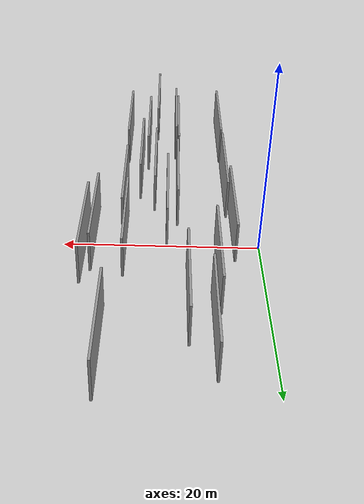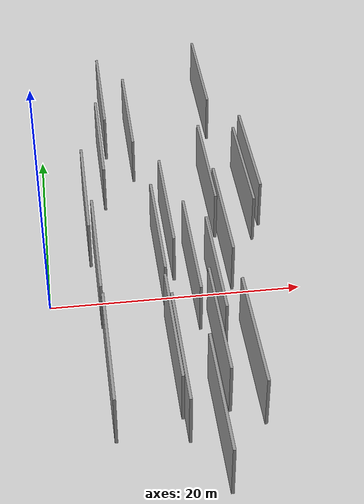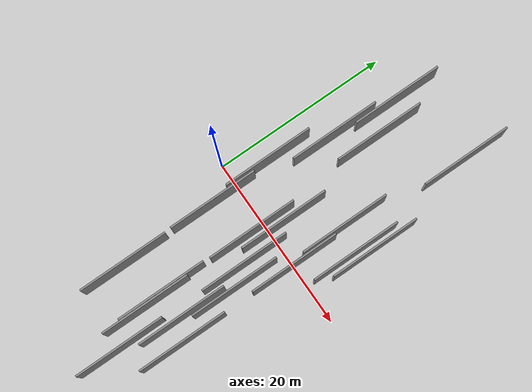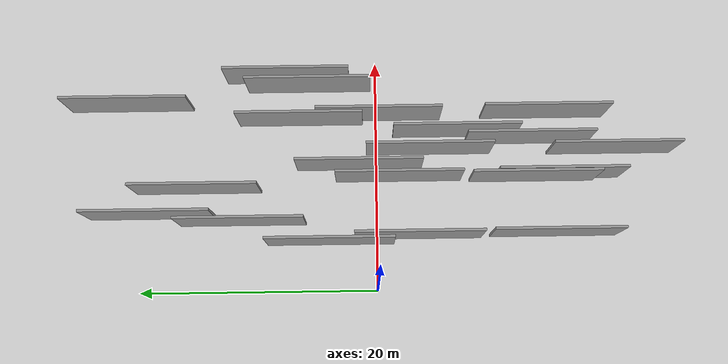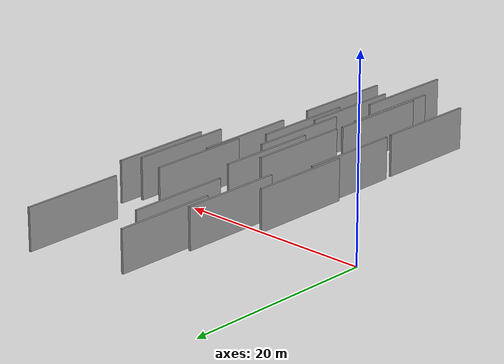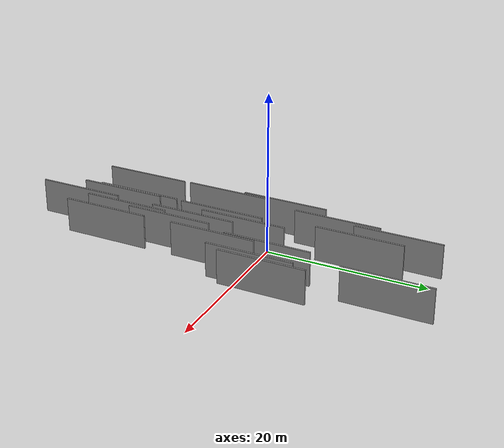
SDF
<sdf version="1.6">
 <world name="default">
  <scene>
   <sky><clouds><speed>12</speed></clouds></sky>
   <ambient>0.4 0.4 0.4 1</ambient>
   <background>0.7 0.7 0.7 1</background>
   <shadows>1</shadows>
  </scene>
  <gravity>0 0 -9.8066</gravity>
  <magnetic_field>6e-06 2.3e-05 -4.2e-05</magnetic_field>
  <physics default="0" name="default_physics" type="ode">
   <ode>
    <solver>
     <type>quick</type>
     <iters>10</iters>
     <sor>1.0</sor>
     <use_dynamic_moi_rescaling>0</use_dynamic_moi_rescaling>
    </solver>
    <constraints>
     <cfm>0</cfm>
     <erp>0.2</erp>
     <contact_max_correcting_vel>100</contact_max_correcting_vel>
     <contact_surface_layer>0.001</contact_surface_layer>
    </constraints>
   </ode>
   <max_step_size>0.004</max_step_size>
   <real_time_factor>1</real_time_factor>
   <real_time_update_rate>250</real_time_update_rate>
  </physics>
  <light name="sun" type="directional">
   <pose>0 0 10 0 0 0</pose>
   <diffuse>0.8 0.8 0.8 1</diffuse>
   <specular>0.2 0.2 0.2 1</specular>
   <attenuation>
    <range>1000</range>
    <constant>0.9</constant>
    <linear>0.01</linear>
    <quadratic>0.001</quadratic>
   </attenuation>
   <direction>-0.5 0.1 -0.9</direction>
  </light>
  <model name="grey_wall_1">
   <static>1</static>
   <pose>8.4671 -1.6978 5.0 0.000000 0.000000 1.570796</pose>
   <link name="link">
    <pose>0 0 2.00 0 0 0</pose>
    <collision name="collision"><geometry><box><size>10.00 0.2 4.00</size></box></geometry></collision>
    <visual name="visual">
     <cast_shadows>0</cast_shadows>
     <geometry><box><size>10.00 0.2 4.00</size></box></geometry>
     <material>
      <script>
       <uri>model://grey_wall/materials/scripts</uri>
       <uri>model://grey_wall/materials/textures</uri>
       <name>vrc/grey_wall</name>
      </script>
     </material>
    </visual>
   </link>
  </model>
  <model name="grey_wall_2">
   <static>1</static>
   <pose>7.6468 14.2933 5.0 0.000000 0.000000 1.570796</pose>
   <link name="link">
    <pose>0 0 2.00 0 0 0</pose>
    <collision name="collision"><geometry><box><size>10.00 0.2 4.00</size></box></geometry></collision>
    <visual name="visual">
     <cast_shadows>0</cast_shadows>
     <geometry><box><size>10.00 0.2 4.00</size></box></geometry>
     <material>
      <script>
       <uri>model://grey_wall/materials/scripts</uri>
       <uri>model://grey_wall/materials/textures</uri>
       <name>vrc/grey_wall</name>
      </script>
     </material>
    </visual>
   </link>
  </model>
  <model name="grey_wall_3">
   <static>1</static>
   <pose>11.5002 -12.1153 5.0 0.000000 0.000000 1.570796</pose>
   <link name="link">
    <pose>0 0 2.00 0 0 0</pose>
    <collision name="collision"><geometry><box><size>10.00 0.2 4.00</size></box></geometry></collision>
    <visual name="visual">
     <cast_shadows>0</cast_shadows>
     <geometry><box><size>10.00 0.2 4.00</size></box></geometry>
     <material>
      <script>
       <uri>model://grey_wall/materials/scripts</uri>
       <uri>model://grey_wall/materials/textures</uri>
       <name>vrc/grey_wall</name>
      </script>
     </material>
    </visual>
   </link>
  </model>
  <model name="grey_wall_4">
   <static>1</static>
   <pose>5.0093 10.6952 5.0 0.000000 0.000000 1.570796</pose>
   <link name="link">
    <pose>0 0 2.00 0 0 0</pose>
    <collision name="collision"><geometry><box><size>10.00 0.2 4.00</size></box></geometry></collision>
    <visual name="visual">
     <cast_shadows>0</cast_shadows>
     <geometry><box><size>10.00 0.2 4.00</size></box></geometry>
     <material>
      <script>
       <uri>model://grey_wall/materials/scripts</uri>
       <uri>model://grey_wall/materials/textures</uri>
       <name>vrc/grey_wall</name>
      </script>
     </material>
    </visual>
   </link>
  </model>
  <model name="grey_wall_5">
   <static>1</static>
   <pose>12.1381 -6.3088 5.0 0.000000 0.000000 1.570796</pose>
   <link name="link">
    <pose>0 0 2.00 0 0 0</pose>
    <collision name="collision"><geometry><box><size>10.00 0.2 4.00</size></box></geometry></collision>
    <visual name="visual">
     <cast_shadows>0</cast_shadows>
     <geometry><box><size>10.00 0.2 4.00</size></box></geometry>
     <material>
      <script>
       <uri>model://grey_wall/materials/scripts</uri>
       <uri>model://grey_wall/materials/textures</uri>
       <name>vrc/grey_wall</name>
      </script>
     </material>
    </visual>
   </link>
  </model>
  <model name="grey_wall_6">
   <static>1</static>
   <pose>3.7926 -3.1855 5.0 0.000000 0.000000 1.570796</pose>
   <link name="link">
    <pose>0 0 2.00 0 0 0</pose>
    <collision name="collision"><geometry><box><size>10.00 0.2 4.00</size></box></geometry></collision>
    <visual name="visual">
     <cast_shadows>0</cast_shadows>
     <geometry><box><size>10.00 0.2 4.00</size></box></geometry>
     <material>
      <script>
       <uri>model://grey_wall/materials/scripts</uri>
       <uri>model://grey_wall/materials/textures</uri>
       <name>vrc/grey_wall</name>
      </script>
     </material>
    </visual>
   </link>
  </model>
  <model name="grey_wall_7">
   <static>1</static>
   <pose>9.4521 1.4201 5.0 0.000000 0.000000 1.570796</pose>
   <link name="link">
    <pose>0 0 2.00 0 0 0</pose>
    <collision name="collision"><geometry><box><size>10.00 0.2 4.00</size></box></geometry></collision>
    <visual name="visual">
     <cast_shadows>0</cast_shadows>
     <geometry><box><size>10.00 0.2 4.00</size></box></geometry>
     <material>
      <script>
       <uri>model://grey_wall/materials/scripts</uri>
       <uri>model://grey_wall/materials/textures</uri>
       <name>vrc/grey_wall</name>
      </script>
     </material>
    </visual>
   </link>
  </model>
  <model name="grey_wall_8">
   <static>1</static>
   <pose>14.5979 19.9348 5.0 0.000000 0.000000 1.570796</pose>
   <link name="link">
    <pose>0 0 2.00 0 0 0</pose>
    <collision name="collision"><geometry><box><size>10.00 0.2 4.00</size></box></geometry></collision>
    <visual name="visual">
     <cast_shadows>0</cast_shadows>
     <geometry><box><size>10.00 0.2 4.00</size></box></geometry>
     <material>
      <script>
       <uri>model://grey_wall/materials/scripts</uri>
       <uri>model://grey_wall/materials/textures</uri>
       <name>vrc/grey_wall</name>
      </script>
     </material>
    </visual>
   </link>
  </model>
  <model name="grey_wall_9">
   <static>1</static>
   <pose>8.3537 -12.3968 5.0 0.000000 0.000000 1.570796</pose>
   <link name="link">
    <pose>0 0 2.00 0 0 0</pose>
    <collision name="collision"><geometry><box><size>10.00 0.2 4.00</size></box></geometry></collision>
    <visual name="visual">
     <cast_shadows>0</cast_shadows>
     <geometry><box><size>10.00 0.2 4.00</size></box></geometry>
     <material>
      <script>
       <uri>model://grey_wall/materials/scripts</uri>
       <uri>model://grey_wall/materials/textures</uri>
       <name>vrc/grey_wall</name>
      </script>
     </material>
    </visual>
   </link>
  </model>
  <model name="grey_wall_10">
   <static>1</static>
   <pose>16.8935 7.1975 5.0 0.000000 0.000000 1.570796</pose>
   <link name="link">
    <pose>0 0 2.00 0 0 0</pose>
    <collision name="collision"><geometry><box><size>10.00 0.2 4.00</size></box></geometry></collision>
    <visual name="visual">
     <cast_shadows>0</cast_shadows>
     <geometry><box><size>10.00 0.2 4.00</size></box></geometry>
     <material>
      <script>
       <uri>model://grey_wall/materials/scripts</uri>
       <uri>model://grey_wall/materials/textures</uri>
       <name>vrc/grey_wall</name>
      </script>
     </material>
    </visual>
   </link>
  </model>
  <model name="grey_wall_11">
   <static>1</static>
   <pose>16.0885 5.4564 5.0 0.000000 0.000000 1.570796</pose>
   <link name="link">
    <pose>0 0 2.00 0 0 0</pose>
    <collision name="collision"><geometry><box><size>10.00 0.2 4.00</size></box></geometry></collision>
    <visual name="visual">
     <cast_shadows>0</cast_shadows>
     <geometry><box><size>10.00 0.2 4.00</size></box></geometry>
     <material>
      <script>
       <uri>model://grey_wall/materials/scripts</uri>
       <uri>model://grey_wall/materials/textures</uri>
       <name>vrc/grey_wall</name>
      </script>
     </material>
    </visual>
   </link>
  </model>
  <model name="grey_wall_12">
   <static>1</static>
   <pose>3.3902 3.7227 5.0 0.000000 0.000000 1.570796</pose>
   <link name="link">
    <pose>0 0 2.00 0 0 0</pose>
    <collision name="collision"><geometry><box><size>10.00 0.2 4.00</size></box></geometry></collision>
    <visual name="visual">
     <cast_shadows>0</cast_shadows>
     <geometry><box><size>10.00 0.2 4.00</size></box></geometry>
     <material>
      <script>
       <uri>model://grey_wall/materials/scripts</uri>
       <uri>model://grey_wall/materials/textures</uri>
       <name>vrc/grey_wall</name>
      </script>
     </material>
    </visual>
   </link>
  </model>
  <model name="grey_wall_13">
   <static>1</static>
   <pose>13.2383 6.1250 5.0 0.000000 0.000000 1.570796</pose>
   <link name="link">
    <pose>0 0 2.00 0 0 0</pose>
    <collision name="collision"><geometry><box><size>10.00 0.2 4.00</size></box></geometry></collision>
    <visual name="visual">
     <cast_shadows>0</cast_shadows>
     <geometry><box><size>10.00 0.2 4.00</size></box></geometry>
     <material>
      <script>
       <uri>model://grey_wall/materials/scripts</uri>
       <uri>model://grey_wall/materials/textures</uri>
       <name>vrc/grey_wall</name>
      </script>
     </material>
    </visual>
   </link>
  </model>
  <model name="grey_wall_14">
   <static>1</static>
   <pose>3.8675 -13.8784 5.0 0.000000 0.000000 1.570796</pose>
   <link name="link">
    <pose>0 0 2.00 0 0 0</pose>
    <collision name="collision"><geometry><box><size>10.00 0.2 4.00</size></box></geometry></collision>
    <visual name="visual">
     <cast_shadows>0</cast_shadows>
     <geometry><box><size>10.00 0.2 4.00</size></box></geometry>
     <material>
      <script>
       <uri>model://grey_wall/materials/scripts</uri>
       <uri>model://grey_wall/materials/textures</uri>
       <name>vrc/grey_wall</name>
      </script>
     </material>
    </visual>
   </link>
  </model>
  <model name="grey_wall_15">
   <static>1</static>
   <pose>13.5792 -0.1667 5.0 0.000000 0.000000 1.570796</pose>
   <link name="link">
    <pose>0 0 2.00 0 0 0</pose>
    <collision name="collision"><geometry><box><size>10.00 0.2 4.00</size></box></geometry></collision>
    <visual name="visual">
     <cast_shadows>0</cast_shadows>
     <geometry><box><size>10.00 0.2 4.00</size></box></geometry>
     <material>
      <script>
       <uri>model://grey_wall/materials/scripts</uri>
       <uri>model://grey_wall/materials/textures</uri>
       <name>vrc/grey_wall</name>
      </script>
     </material>
    </visual>
   </link>
  </model>
  <model name="grey_wall_16">
   <static>1</static>
   <pose>5.6091 17.8935 5.0 0.000000 0.000000 1.570796</pose>
   <link name="link">
    <pose>0 0 2.00 0 0 0</pose>
    <collision name="collision"><geometry><box><size>10.00 0.2 4.00</size></box></geometry></collision>
    <visual name="visual">
     <cast_shadows>0</cast_shadows>
     <geometry><box><size>10.00 0.2 4.00</size></box></geometry>
     <material>
      <script>
       <uri>model://grey_wall/materials/scripts</uri>
       <uri>model://grey_wall/materials/textures</uri>
       <name>vrc/grey_wall</name>
      </script>
     </material>
    </visual>
   </link>
  </model>
  <model name="grey_wall_17">
   <static>1</static>
   <pose>8.5728 -14.4339 5.0 0.000000 0.000000 1.570796</pose>
   <link name="link">
    <pose>0 0 2.00 0 0 0</pose>
    <collision name="collision"><geometry><box><size>10.00 0.2 4.00</size></box></geometry></collision>
    <visual name="visual">
     <cast_shadows>0</cast_shadows>
     <geometry><box><size>10.00 0.2 4.00</size></box></geometry>
     <material>
      <script>
       <uri>model://grey_wall/materials/scripts</uri>
       <uri>model://grey_wall/materials/textures</uri>
       <name>vrc/grey_wall</name>
      </script>
     </material>
    </visual>
   </link>
  </model>
  <model name="grey_wall_18">
   <static>1</static>
   <pose>10.5792 -18.7793 5.0 0.000000 0.000000 1.570796</pose>
   <link name="link">
    <pose>0 0 2.00 0 0 0</pose>
    <collision name="collision"><geometry><box><size>10.00 0.2 4.00</size></box></geometry></collision>
    <visual name="visual">
     <cast_shadows>0</cast_shadows>
     <geometry><box><size>10.00 0.2 4.00</size></box></geometry>
     <material>
      <script>
       <uri>model://grey_wall/materials/scripts</uri>
       <uri>model://grey_wall/materials/textures</uri>
       <name>vrc/grey_wall</name>
      </script>
     </material>
    </visual>
   </link>
  </model>
  <model name="grey_wall_19">
   <static>1</static>
   <pose>10.6783 -4.1365 5.0 0.000000 0.000000 1.570796</pose>
   <link name="link">
    <pose>0 0 2.00 0 0 0</pose>
    <collision name="collision"><geometry><box><size>10.00 0.2 4.00</size></box></geometry></collision>
    <visual name="visual">
     <cast_shadows>0</cast_shadows>
     <geometry><box><size>10.00 0.2 4.00</size></box></geometry>
     <material>
      <script>
       <uri>model://grey_wall/materials/scripts</uri>
       <uri>model://grey_wall/materials/textures</uri>
       <name>vrc/grey_wall</name>
      </script>
     </material>
    </visual>
   </link>
  </model>
  <model name="grey_wall_20">
   <static>1</static>
   <pose>13.6532 -13.4886 5.0 0.000000 0.000000 1.570796</pose>
   <link name="link">
    <pose>0 0 2.00 0 0 0</pose>
    <collision name="collision"><geometry><box><size>10.00 0.2 4.00</size></box></geometry></collision>
    <visual name="visual">
     <cast_shadows>0</cast_shadows>
     <geometry><box><size>10.00 0.2 4.00</size></box></geometry>
     <material>
      <script>
       <uri>model://grey_wall/materials/scripts</uri>
       <uri>model://grey_wall/materials/textures</uri>
       <name>vrc/grey_wall</name>
      </script>
     </material>
    </visual>
   </link>
  </model>
 </world>
</sdf>
